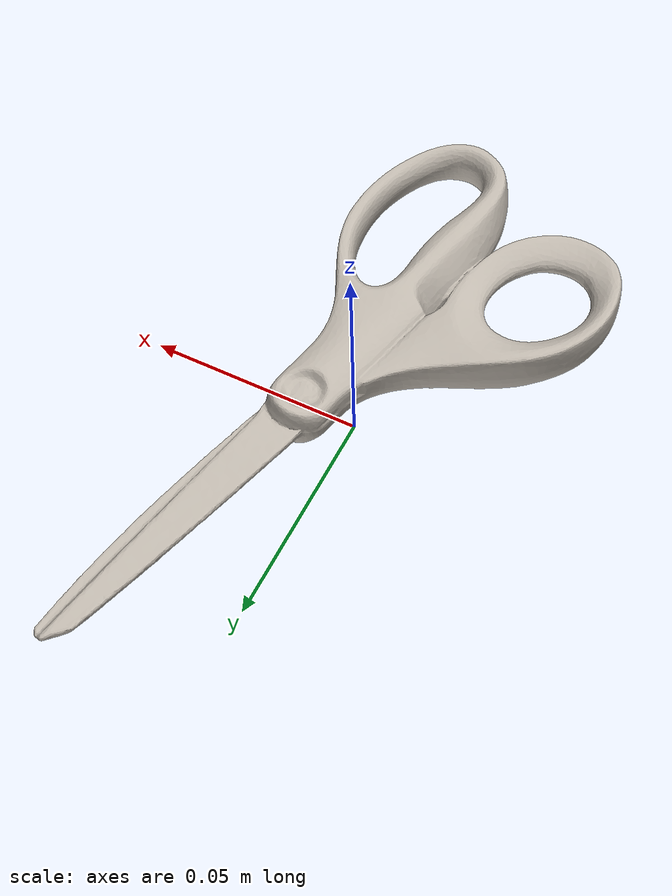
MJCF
<mujoco model="bread">
  <asset>
    <mesh file="nontextured.stl" name="obj_mesh" scale="0.8 0.8 0.8"/>
    <texture file="../../../../../textures/bread.png" type="2d" name="tex-bread" />
    <material name="bread" reflectance="0.7" texrepeat="15 15" texture="tex-bread" texuniform="true"/>
  </asset>
  <worldbody>
    <body>
      <body name="collision">
        <geom pos="-0.010022 -0.03593899999999999 -0.0074735" mesh="obj_mesh" type="mesh" solimp="0.998 0.998 0.001" solref="0.001 1" density="50" friction="0.95 0.3 0.1"  material="bread" group="1" condim="4"/>
      </body>
      <body name="visual">
        <geom pos="-0.010022 -0.03593899999999999 -0.0074735" mesh="obj_mesh" type="mesh" material="bread"  conaffinity="0" contype="0"  group="0" mass="0.0001"/>
        <geom pos="-0.010022 -0.03593899999999999 -0.0074735" mesh="obj_mesh" type="mesh" material="bread"  conaffinity="0" contype="0"  group="1" mass="0.0001"/>
      </body>
      <site rgba="0 0 0 0" size="0.005" pos="0 0 -0.0078355" name="bottom_site"/>
      <site rgba="0 0 0 0" size="0.005" pos="0 0 0.0078355" name="top_site"/>
      <site rgba="0 0 0 0" size="0.005" pos="0.04804 0.10076199999999999 0.0078355" name="horizontal_radius_site"/>
    </body>
  </worldbody>
</mujoco>
